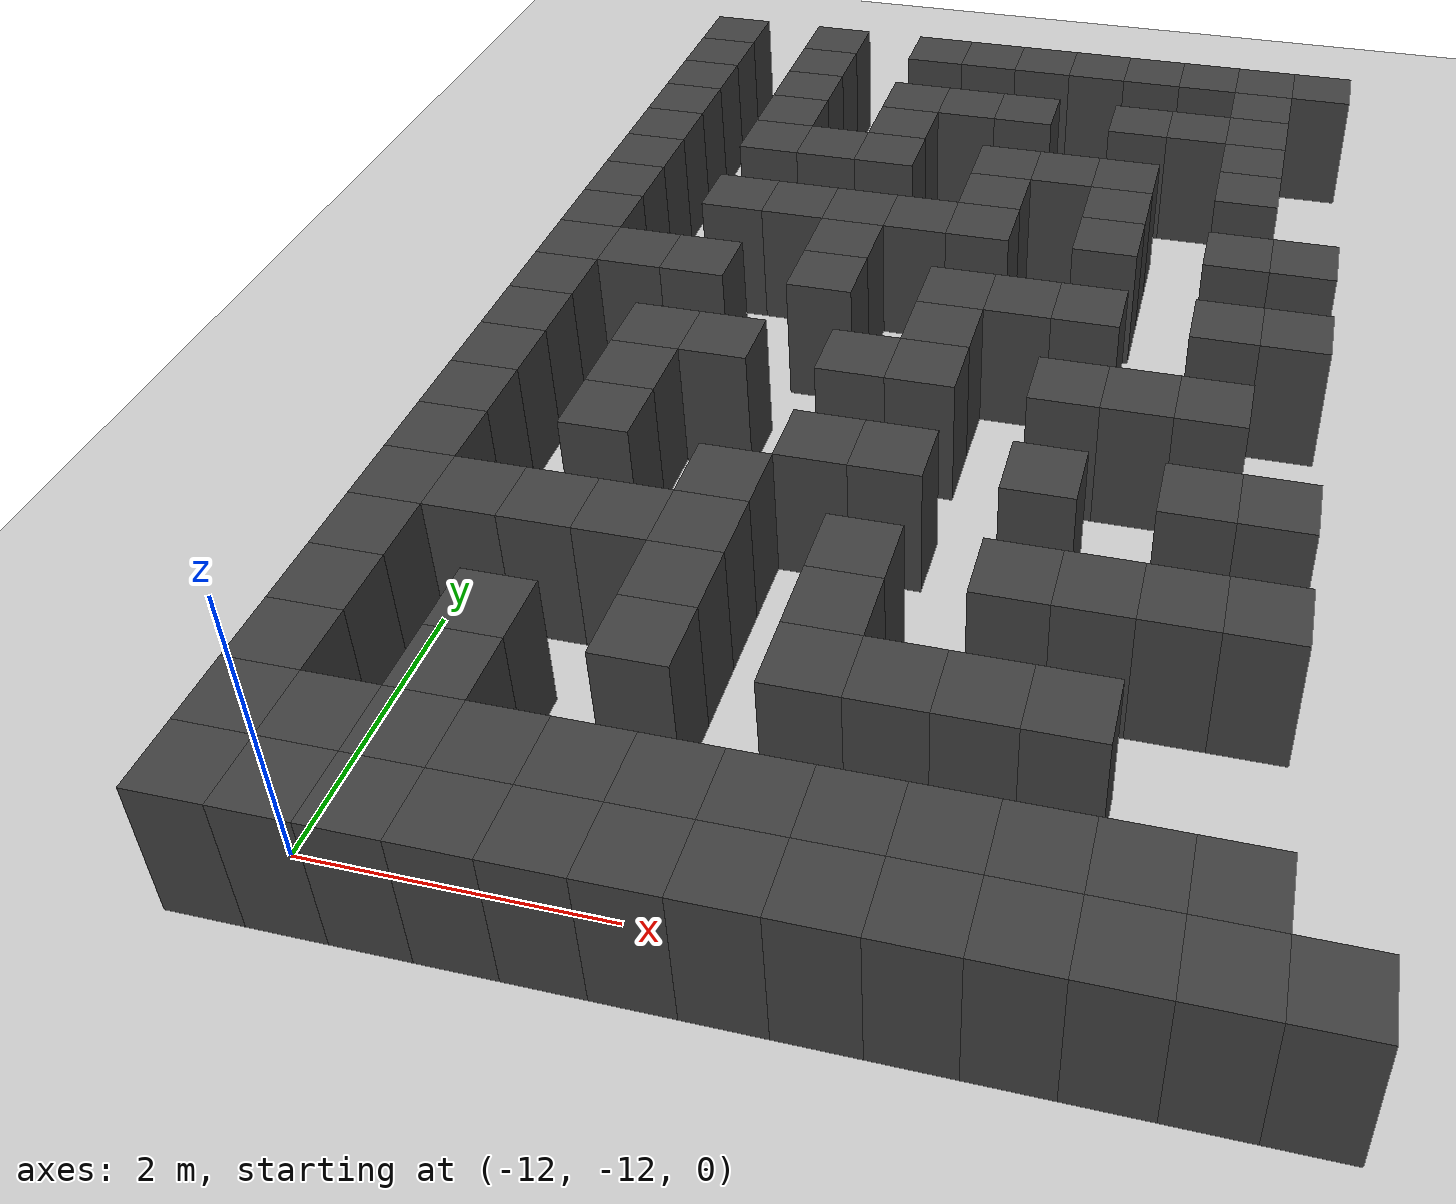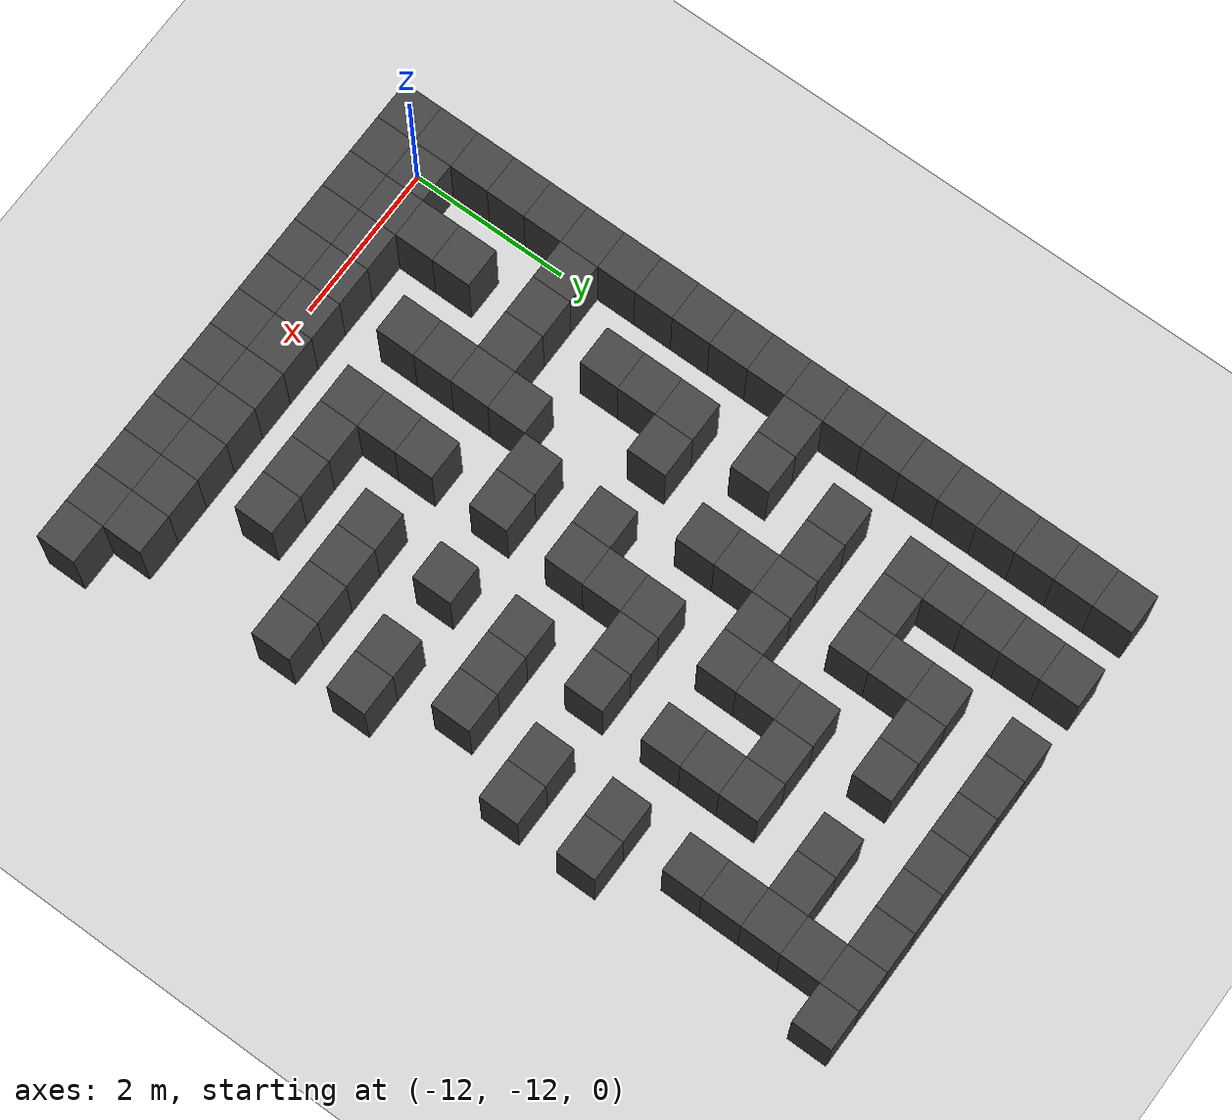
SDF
<sdf version="1.7">
 <world name="map_16734">
  <model name="ground_plane">
   <static>true</static>
   <link name="link">
    <collision name="collision">
     <geometry><plane><normal>0 0 1</normal><size>200 200</size></plane></geometry>
    </collision>
    <visual name="visual">
     <geometry><plane><normal>0 0 1</normal><size>200 200</size></plane></geometry>
     <material><ambient>0.8 0.8 0.8 1</ambient><diffuse>0.8 0.8 0.8 1</diffuse></material>
    </visual>
   </link>
  </model>
  <model name="maze_environment">
   <static>true</static>
   <link name="wall_727">
    <pose>-12.250 -2.750 0.500 0 0 0</pose>
    <collision name="col"><geometry><box><size>0.5 0.5 1.0</size></box></geometry></collision>
    <visual name="vis">
     <geometry><box><size>0.5 0.5 1.0</size></box></geometry>
     <material><ambient>0.15 0.15 0.15 1</ambient><diffuse>0.25 0.25 0.25 1</diffuse></material>
    </visual>
   </link>
   <link name="wall_728">
    <pose>-11.250 -2.750 0.500 0 0 0</pose>
    <collision name="col"><geometry><box><size>0.5 0.5 1.0</size></box></geometry></collision>
    <visual name="vis">
     <geometry><box><size>0.5 0.5 1.0</size></box></geometry>
     <material><ambient>0.15 0.15 0.15 1</ambient><diffuse>0.25 0.25 0.25 1</diffuse></material>
    </visual>
   </link>
   <link name="wall_729">
    <pose>-10.250 -2.750 0.500 0 0 0</pose>
    <collision name="col"><geometry><box><size>0.5 0.5 1.0</size></box></geometry></collision>
    <visual name="vis">
     <geometry><box><size>0.5 0.5 1.0</size></box></geometry>
     <material><ambient>0.15 0.15 0.15 1</ambient><diffuse>0.25 0.25 0.25 1</diffuse></material>
    </visual>
   </link>
   <link name="wall_730">
    <pose>-9.750 -2.750 0.500 0 0 0</pose>
    <collision name="col"><geometry><box><size>0.5 0.5 1.0</size></box></geometry></collision>
    <visual name="vis">
     <geometry><box><size>0.5 0.5 1.0</size></box></geometry>
     <material><ambient>0.15 0.15 0.15 1</ambient><diffuse>0.25 0.25 0.25 1</diffuse></material>
    </visual>
   </link>
   <link name="wall_731">
    <pose>-9.250 -2.750 0.500 0 0 0</pose>
    <collision name="col"><geometry><box><size>0.5 0.5 1.0</size></box></geometry></collision>
    <visual name="vis">
     <geometry><box><size>0.5 0.5 1.0</size></box></geometry>
     <material><ambient>0.15 0.15 0.15 1</ambient><diffuse>0.25 0.25 0.25 1</diffuse></material>
    </visual>
   </link>
   <link name="wall_732">
    <pose>-8.750 -2.750 0.500 0 0 0</pose>
    <collision name="col"><geometry><box><size>0.5 0.5 1.0</size></box></geometry></collision>
    <visual name="vis">
     <geometry><box><size>0.5 0.5 1.0</size></box></geometry>
     <material><ambient>0.15 0.15 0.15 1</ambient><diffuse>0.25 0.25 0.25 1</diffuse></material>
    </visual>
   </link>
   <link name="wall_733">
    <pose>-8.250 -2.750 0.500 0 0 0</pose>
    <collision name="col"><geometry><box><size>0.5 0.5 1.0</size></box></geometry></collision>
    <visual name="vis">
     <geometry><box><size>0.5 0.5 1.0</size></box></geometry>
     <material><ambient>0.15 0.15 0.15 1</ambient><diffuse>0.25 0.25 0.25 1</diffuse></material>
    </visual>
   </link>
   <link name="wall_734">
    <pose>-7.750 -2.750 0.500 0 0 0</pose>
    <collision name="col"><geometry><box><size>0.5 0.5 1.0</size></box></geometry></collision>
    <visual name="vis">
     <geometry><box><size>0.5 0.5 1.0</size></box></geometry>
     <material><ambient>0.15 0.15 0.15 1</ambient><diffuse>0.25 0.25 0.25 1</diffuse></material>
    </visual>
   </link>
   <link name="wall_735">
    <pose>-7.250 -2.750 0.500 0 0 0</pose>
    <collision name="col"><geometry><box><size>0.5 0.5 1.0</size></box></geometry></collision>
    <visual name="vis">
     <geometry><box><size>0.5 0.5 1.0</size></box></geometry>
     <material><ambient>0.15 0.15 0.15 1</ambient><diffuse>0.25 0.25 0.25 1</diffuse></material>
    </visual>
   </link>
   <link name="wall_736">
    <pose>-6.750 -2.750 0.500 0 0 0</pose>
    <collision name="col"><geometry><box><size>0.5 0.5 1.0</size></box></geometry></collision>
    <visual name="vis">
     <geometry><box><size>0.5 0.5 1.0</size></box></geometry>
     <material><ambient>0.15 0.15 0.15 1</ambient><diffuse>0.25 0.25 0.25 1</diffuse></material>
    </visual>
   </link>
   <link name="wall_760">
    <pose>-12.250 -3.250 0.500 0 0 0</pose>
    <collision name="col"><geometry><box><size>0.5 0.5 1.0</size></box></geometry></collision>
    <visual name="vis">
     <geometry><box><size>0.5 0.5 1.0</size></box></geometry>
     <material><ambient>0.15 0.15 0.15 1</ambient><diffuse>0.25 0.25 0.25 1</diffuse></material>
    </visual>
   </link>
   <link name="wall_761">
    <pose>-11.250 -3.250 0.500 0 0 0</pose>
    <collision name="col"><geometry><box><size>0.5 0.5 1.0</size></box></geometry></collision>
    <visual name="vis">
     <geometry><box><size>0.5 0.5 1.0</size></box></geometry>
     <material><ambient>0.15 0.15 0.15 1</ambient><diffuse>0.25 0.25 0.25 1</diffuse></material>
    </visual>
   </link>
   <link name="wall_762">
    <pose>-7.250 -3.250 0.500 0 0 0</pose>
    <collision name="col"><geometry><box><size>0.5 0.5 1.0</size></box></geometry></collision>
    <visual name="vis">
     <geometry><box><size>0.5 0.5 1.0</size></box></geometry>
     <material><ambient>0.15 0.15 0.15 1</ambient><diffuse>0.25 0.25 0.25 1</diffuse></material>
    </visual>
   </link>
   <link name="wall_774">
    <pose>-12.250 -3.750 0.500 0 0 0</pose>
    <collision name="col"><geometry><box><size>0.5 0.5 1.0</size></box></geometry></collision>
    <visual name="vis">
     <geometry><box><size>0.5 0.5 1.0</size></box></geometry>
     <material><ambient>0.15 0.15 0.15 1</ambient><diffuse>0.25 0.25 0.25 1</diffuse></material>
    </visual>
   </link>
   <link name="wall_775">
    <pose>-11.250 -3.750 0.500 0 0 0</pose>
    <collision name="col"><geometry><box><size>0.5 0.5 1.0</size></box></geometry></collision>
    <visual name="vis">
     <geometry><box><size>0.5 0.5 1.0</size></box></geometry>
     <material><ambient>0.15 0.15 0.15 1</ambient><diffuse>0.25 0.25 0.25 1</diffuse></material>
    </visual>
   </link>
   <link name="wall_776">
    <pose>-10.250 -3.750 0.500 0 0 0</pose>
    <collision name="col"><geometry><box><size>0.5 0.5 1.0</size></box></geometry></collision>
    <visual name="vis">
     <geometry><box><size>0.5 0.5 1.0</size></box></geometry>
     <material><ambient>0.15 0.15 0.15 1</ambient><diffuse>0.25 0.25 0.25 1</diffuse></material>
    </visual>
   </link>
   <link name="wall_777">
    <pose>-9.750 -3.750 0.500 0 0 0</pose>
    <collision name="col"><geometry><box><size>0.5 0.5 1.0</size></box></geometry></collision>
    <visual name="vis">
     <geometry><box><size>0.5 0.5 1.0</size></box></geometry>
     <material><ambient>0.15 0.15 0.15 1</ambient><diffuse>0.25 0.25 0.25 1</diffuse></material>
    </visual>
   </link>
   <link name="wall_778">
    <pose>-9.250 -3.750 0.500 0 0 0</pose>
    <collision name="col"><geometry><box><size>0.5 0.5 1.0</size></box></geometry></collision>
    <visual name="vis">
     <geometry><box><size>0.5 0.5 1.0</size></box></geometry>
     <material><ambient>0.15 0.15 0.15 1</ambient><diffuse>0.25 0.25 0.25 1</diffuse></material>
    </visual>
   </link>
   <link name="wall_779">
    <pose>-8.250 -3.750 0.500 0 0 0</pose>
    <collision name="col"><geometry><box><size>0.5 0.5 1.0</size></box></geometry></collision>
    <visual name="vis">
     <geometry><box><size>0.5 0.5 1.0</size></box></geometry>
     <material><ambient>0.15 0.15 0.15 1</ambient><diffuse>0.25 0.25 0.25 1</diffuse></material>
    </visual>
   </link>
   <link name="wall_780">
    <pose>-7.750 -3.750 0.500 0 0 0</pose>
    <collision name="col"><geometry><box><size>0.5 0.5 1.0</size></box></geometry></collision>
    <visual name="vis">
     <geometry><box><size>0.5 0.5 1.0</size></box></geometry>
     <material><ambient>0.15 0.15 0.15 1</ambient><diffuse>0.25 0.25 0.25 1</diffuse></material>
    </visual>
   </link>
   <link name="wall_781">
    <pose>-7.250 -3.750 0.500 0 0 0</pose>
    <collision name="col"><geometry><box><size>0.5 0.5 1.0</size></box></geometry></collision>
    <visual name="vis">
     <geometry><box><size>0.5 0.5 1.0</size></box></geometry>
     <material><ambient>0.15 0.15 0.15 1</ambient><diffuse>0.25 0.25 0.25 1</diffuse></material>
    </visual>
   </link>
   <link name="wall_811">
    <pose>-12.250 -4.250 0.500 0 0 0</pose>
    <collision name="col"><geometry><box><size>0.5 0.5 1.0</size></box></geometry></collision>
    <visual name="vis">
     <geometry><box><size>0.5 0.5 1.0</size></box></geometry>
     <material><ambient>0.15 0.15 0.15 1</ambient><diffuse>0.25 0.25 0.25 1</diffuse></material>
    </visual>
   </link>
   <link name="wall_812">
    <pose>-11.250 -4.250 0.500 0 0 0</pose>
    <collision name="col"><geometry><box><size>0.5 0.5 1.0</size></box></geometry></collision>
    <visual name="vis">
     <geometry><box><size>0.5 0.5 1.0</size></box></geometry>
     <material><ambient>0.15 0.15 0.15 1</ambient><diffuse>0.25 0.25 0.25 1</diffuse></material>
    </visual>
   </link>
   <link name="wall_813">
    <pose>-10.250 -4.250 0.500 0 0 0</pose>
    <collision name="col"><geometry><box><size>0.5 0.5 1.0</size></box></geometry></collision>
    <visual name="vis">
     <geometry><box><size>0.5 0.5 1.0</size></box></geometry>
     <material><ambient>0.15 0.15 0.15 1</ambient><diffuse>0.25 0.25 0.25 1</diffuse></material>
    </visual>
   </link>
   <link name="wall_814">
    <pose>-7.250 -4.250 0.500 0 0 0</pose>
    <collision name="col"><geometry><box><size>0.5 0.5 1.0</size></box></geometry></collision>
    <visual name="vis">
     <geometry><box><size>0.5 0.5 1.0</size></box></geometry>
     <material><ambient>0.15 0.15 0.15 1</ambient><diffuse>0.25 0.25 0.25 1</diffuse></material>
    </visual>
   </link>
   <link name="wall_824">
    <pose>-12.250 -4.750 0.500 0 0 0</pose>
    <collision name="col"><geometry><box><size>0.5 0.5 1.0</size></box></geometry></collision>
    <visual name="vis">
     <geometry><box><size>0.5 0.5 1.0</size></box></geometry>
     <material><ambient>0.15 0.15 0.15 1</ambient><diffuse>0.25 0.25 0.25 1</diffuse></material>
    </visual>
   </link>
   <link name="wall_825">
    <pose>-11.250 -4.750 0.500 0 0 0</pose>
    <collision name="col"><geometry><box><size>0.5 0.5 1.0</size></box></geometry></collision>
    <visual name="vis">
     <geometry><box><size>0.5 0.5 1.0</size></box></geometry>
     <material><ambient>0.15 0.15 0.15 1</ambient><diffuse>0.25 0.25 0.25 1</diffuse></material>
    </visual>
   </link>
   <link name="wall_826">
    <pose>-10.750 -4.750 0.500 0 0 0</pose>
    <collision name="col"><geometry><box><size>0.5 0.5 1.0</size></box></geometry></collision>
    <visual name="vis">
     <geometry><box><size>0.5 0.5 1.0</size></box></geometry>
     <material><ambient>0.15 0.15 0.15 1</ambient><diffuse>0.25 0.25 0.25 1</diffuse></material>
    </visual>
   </link>
   <link name="wall_827">
    <pose>-10.250 -4.750 0.500 0 0 0</pose>
    <collision name="col"><geometry><box><size>0.5 0.5 1.0</size></box></geometry></collision>
    <visual name="vis">
     <geometry><box><size>0.5 0.5 1.0</size></box></geometry>
     <material><ambient>0.15 0.15 0.15 1</ambient><diffuse>0.25 0.25 0.25 1</diffuse></material>
    </visual>
   </link>
   <link name="wall_828">
    <pose>-9.250 -4.750 0.500 0 0 0</pose>
    <collision name="col"><geometry><box><size>0.5 0.5 1.0</size></box></geometry></collision>
    <visual name="vis">
     <geometry><box><size>0.5 0.5 1.0</size></box></geometry>
     <material><ambient>0.15 0.15 0.15 1</ambient><diffuse>0.25 0.25 0.25 1</diffuse></material>
    </visual>
   </link>
   <link name="wall_829">
    <pose>-8.750 -4.750 0.500 0 0 0</pose>
    <collision name="col"><geometry><box><size>0.5 0.5 1.0</size></box></geometry></collision>
    <visual name="vis">
     <geometry><box><size>0.5 0.5 1.0</size></box></geometry>
     <material><ambient>0.15 0.15 0.15 1</ambient><diffuse>0.25 0.25 0.25 1</diffuse></material>
    </visual>
   </link>
   <link name="wall_830">
    <pose>-8.250 -4.750 0.500 0 0 0</pose>
    <collision name="col"><geometry><box><size>0.5 0.5 1.0</size></box></geometry></collision>
    <visual name="vis">
     <geometry><box><size>0.5 0.5 1.0</size></box></geometry>
     <material><ambient>0.15 0.15 0.15 1</ambient><diffuse>0.25 0.25 0.25 1</diffuse></material>
    </visual>
   </link>
   <link name="wall_831">
    <pose>-7.250 -4.750 0.500 0 0 0</pose>
    <collision name="col"><geometry><box><size>0.5 0.5 1.0</size></box></geometry></collision>
    <visual name="vis">
     <geometry><box><size>0.5 0.5 1.0</size></box></geometry>
     <material><ambient>0.15 0.15 0.15 1</ambient><diffuse>0.25 0.25 0.25 1</diffuse></material>
    </visual>
   </link>
   <link name="wall_861">
    <pose>-12.250 -5.250 0.500 0 0 0</pose>
    <collision name="col"><geometry><box><size>0.5 0.5 1.0</size></box></geometry></collision>
    <visual name="vis">
     <geometry><box><size>0.5 0.5 1.0</size></box></geometry>
     <material><ambient>0.15 0.15 0.15 1</ambient><diffuse>0.25 0.25 0.25 1</diffuse></material>
    </visual>
   </link>
   <link name="wall_862">
    <pose>-9.250 -5.250 0.500 0 0 0</pose>
    <collision name="col"><geometry><box><size>0.5 0.5 1.0</size></box></geometry></collision>
    <visual name="vis">
     <geometry><box><size>0.5 0.5 1.0</size></box></geometry>
     <material><ambient>0.15 0.15 0.15 1</ambient><diffuse>0.25 0.25 0.25 1</diffuse></material>
    </visual>
   </link>
   <link name="wall_863">
    <pose>-8.250 -5.250 0.500 0 0 0</pose>
    <collision name="col"><geometry><box><size>0.5 0.5 1.0</size></box></geometry></collision>
    <visual name="vis">
     <geometry><box><size>0.5 0.5 1.0</size></box></geometry>
     <material><ambient>0.15 0.15 0.15 1</ambient><diffuse>0.25 0.25 0.25 1</diffuse></material>
    </visual>
   </link>
   <link name="wall_875">
    <pose>-12.250 -5.750 0.500 0 0 0</pose>
    <collision name="col"><geometry><box><size>0.5 0.5 1.0</size></box></geometry></collision>
    <visual name="vis">
     <geometry><box><size>0.5 0.5 1.0</size></box></geometry>
     <material><ambient>0.15 0.15 0.15 1</ambient><diffuse>0.25 0.25 0.25 1</diffuse></material>
    </visual>
   </link>
   <link name="wall_876">
    <pose>-11.250 -5.750 0.500 0 0 0</pose>
    <collision name="col"><geometry><box><size>0.5 0.5 1.0</size></box></geometry></collision>
    <visual name="vis">
     <geometry><box><size>0.5 0.5 1.0</size></box></geometry>
     <material><ambient>0.15 0.15 0.15 1</ambient><diffuse>0.25 0.25 0.25 1</diffuse></material>
    </visual>
   </link>
   <link name="wall_877">
    <pose>-10.750 -5.750 0.500 0 0 0</pose>
    <collision name="col"><geometry><box><size>0.5 0.5 1.0</size></box></geometry></collision>
    <visual name="vis">
     <geometry><box><size>0.5 0.5 1.0</size></box></geometry>
     <material><ambient>0.15 0.15 0.15 1</ambient><diffuse>0.25 0.25 0.25 1</diffuse></material>
    </visual>
   </link>
   <link name="wall_878">
    <pose>-10.250 -5.750 0.500 0 0 0</pose>
    <collision name="col"><geometry><box><size>0.5 0.5 1.0</size></box></geometry></collision>
    <visual name="vis">
     <geometry><box><size>0.5 0.5 1.0</size></box></geometry>
     <material><ambient>0.15 0.15 0.15 1</ambient><diffuse>0.25 0.25 0.25 1</diffuse></material>
    </visual>
   </link>
   <link name="wall_879">
    <pose>-9.750 -5.750 0.500 0 0 0</pose>
    <collision name="col"><geometry><box><size>0.5 0.5 1.0</size></box></geometry></collision>
    <visual name="vis">
     <geometry><box><size>0.5 0.5 1.0</size></box></geometry>
     <material><ambient>0.15 0.15 0.15 1</ambient><diffuse>0.25 0.25 0.25 1</diffuse></material>
    </visual>
   </link>
   <link name="wall_880">
    <pose>-9.250 -5.750 0.500 0 0 0</pose>
    <collision name="col"><geometry><box><size>0.5 0.5 1.0</size></box></geometry></collision>
    <visual name="vis">
     <geometry><box><size>0.5 0.5 1.0</size></box></geometry>
     <material><ambient>0.15 0.15 0.15 1</ambient><diffuse>0.25 0.25 0.25 1</diffuse></material>
    </visual>
   </link>
   <link name="wall_881">
    <pose>-8.250 -5.750 0.500 0 0 0</pose>
    <collision name="col"><geometry><box><size>0.5 0.5 1.0</size></box></geometry></collision>
    <visual name="vis">
     <geometry><box><size>0.5 0.5 1.0</size></box></geometry>
     <material><ambient>0.15 0.15 0.15 1</ambient><diffuse>0.25 0.25 0.25 1</diffuse></material>
    </visual>
   </link>
   <link name="wall_882">
    <pose>-7.250 -5.750 0.500 0 0 0</pose>
    <collision name="col"><geometry><box><size>0.5 0.5 1.0</size></box></geometry></collision>
    <visual name="vis">
     <geometry><box><size>0.5 0.5 1.0</size></box></geometry>
     <material><ambient>0.15 0.15 0.15 1</ambient><diffuse>0.25 0.25 0.25 1</diffuse></material>
    </visual>
   </link>
   <link name="wall_883">
    <pose>-6.750 -5.750 0.500 0 0 0</pose>
    <collision name="col"><geometry><box><size>0.5 0.5 1.0</size></box></geometry></collision>
    <visual name="vis">
     <geometry><box><size>0.5 0.5 1.0</size></box></geometry>
     <material><ambient>0.15 0.15 0.15 1</ambient><diffuse>0.25 0.25 0.25 1</diffuse></material>
    </visual>
   </link>
   <link name="wall_911">
    <pose>-12.250 -6.250 0.500 0 0 0</pose>
    <collision name="col"><geometry><box><size>0.5 0.5 1.0</size></box></geometry></collision>
    <visual name="vis">
     <geometry><box><size>0.5 0.5 1.0</size></box></geometry>
     <material><ambient>0.15 0.15 0.15 1</ambient><diffuse>0.25 0.25 0.25 1</diffuse></material>
    </visual>
   </link>
   <link name="wall_912">
    <pose>-10.250 -6.250 0.500 0 0 0</pose>
    <collision name="col"><geometry><box><size>0.5 0.5 1.0</size></box></geometry></collision>
    <visual name="vis">
     <geometry><box><size>0.5 0.5 1.0</size></box></geometry>
     <material><ambient>0.15 0.15 0.15 1</ambient><diffuse>0.25 0.25 0.25 1</diffuse></material>
    </visual>
   </link>
   <link name="wall_920">
    <pose>-12.250 -6.750 0.500 0 0 0</pose>
    <collision name="col"><geometry><box><size>0.5 0.5 1.0</size></box></geometry></collision>
    <visual name="vis">
     <geometry><box><size>0.5 0.5 1.0</size></box></geometry>
     <material><ambient>0.15 0.15 0.15 1</ambient><diffuse>0.25 0.25 0.25 1</diffuse></material>
    </visual>
   </link>
   <link name="wall_921">
    <pose>-11.750 -6.750 0.500 0 0 0</pose>
    <collision name="col"><geometry><box><size>0.5 0.5 1.0</size></box></geometry></collision>
    <visual name="vis">
     <geometry><box><size>0.5 0.5 1.0</size></box></geometry>
     <material><ambient>0.15 0.15 0.15 1</ambient><diffuse>0.25 0.25 0.25 1</diffuse></material>
    </visual>
   </link>
   <link name="wall_922">
    <pose>-11.250 -6.750 0.500 0 0 0</pose>
    <collision name="col"><geometry><box><size>0.5 0.5 1.0</size></box></geometry></collision>
    <visual name="vis">
     <geometry><box><size>0.5 0.5 1.0</size></box></geometry>
     <material><ambient>0.15 0.15 0.15 1</ambient><diffuse>0.25 0.25 0.25 1</diffuse></material>
    </visual>
   </link>
   <link name="wall_923">
    <pose>-10.250 -6.750 0.500 0 0 0</pose>
    <collision name="col"><geometry><box><size>0.5 0.5 1.0</size></box></geometry></collision>
    <visual name="vis">
     <geometry><box><size>0.5 0.5 1.0</size></box></geometry>
     <material><ambient>0.15 0.15 0.15 1</ambient><diffuse>0.25 0.25 0.25 1</diffuse></material>
    </visual>
   </link>
   <link name="wall_924">
    <pose>-9.250 -6.750 0.500 0 0 0</pose>
    <collision name="col"><geometry><box><size>0.5 0.5 1.0</size></box></geometry></collision>
    <visual name="vis">
     <geometry><box><size>0.5 0.5 1.0</size></box></geometry>
     <material><ambient>0.15 0.15 0.15 1</ambient><diffuse>0.25 0.25 0.25 1</diffuse></material>
    </visual>
   </link>
   <link name="wall_925">
    <pose>-8.750 -6.750 0.500 0 0 0</pose>
    <collision name="col"><geometry><box><size>0.5 0.5 1.0</size></box></geometry></collision>
    <visual name="vis">
     <geometry><box><size>0.5 0.5 1.0</size></box></geometry>
     <material><ambient>0.15 0.15 0.15 1</ambient><diffuse>0.25 0.25 0.25 1</diffuse></material>
    </visual>
   </link>
   <link name="wall_926">
    <pose>-8.250 -6.750 0.500 0 0 0</pose>
    <collision name="col"><geometry><box><size>0.5 0.5 1.0</size></box></geometry></collision>
    <visual name="vis">
     <geometry><box><size>0.5 0.5 1.0</size></box></geometry>
     <material><ambient>0.15 0.15 0.15 1</ambient><diffuse>0.25 0.25 0.25 1</diffuse></material>
    </visual>
   </link>
   <link name="wall_927">
    <pose>-7.250 -6.750 0.500 0 0 0</pose>
    <collision name="col"><geometry><box><size>0.5 0.5 1.0</size></box></geometry></collision>
    <visual name="vis">
     <geometry><box><size>0.5 0.5 1.0</size></box></geometry>
     <material><ambient>0.15 0.15 0.15 1</ambient><diffuse>0.25 0.25 0.25 1</diffuse></material>
    </visual>
   </link>
   <link name="wall_928">
    <pose>-6.750 -6.750 0.500 0 0 0</pose>
    <collision name="col"><geometry><box><size>0.5 0.5 1.0</size></box></geometry></collision>
    <visual name="vis">
     <geometry><box><size>0.5 0.5 1.0</size></box></geometry>
     <material><ambient>0.15 0.15 0.15 1</ambient><diffuse>0.25 0.25 0.25 1</diffuse></material>
    </visual>
   </link>
   <link name="wall_957">
    <pose>-12.250 -7.250 0.500 0 0 0</pose>
    <collision name="col"><geometry><box><size>0.5 0.5 1.0</size></box></geometry></collision>
    <visual name="vis">
     <geometry><box><size>0.5 0.5 1.0</size></box></geometry>
     <material><ambient>0.15 0.15 0.15 1</ambient><diffuse>0.25 0.25 0.25 1</diffuse></material>
    </visual>
   </link>
   <link name="wall_958">
    <pose>-9.250 -7.250 0.500 0 0 0</pose>
    <collision name="col"><geometry><box><size>0.5 0.5 1.0</size></box></geometry></collision>
    <visual name="vis">
     <geometry><box><size>0.5 0.5 1.0</size></box></geometry>
     <material><ambient>0.15 0.15 0.15 1</ambient><diffuse>0.25 0.25 0.25 1</diffuse></material>
    </visual>
   </link>
   <link name="wall_968">
    <pose>-12.250 -7.750 0.500 0 0 0</pose>
    <collision name="col"><geometry><box><size>0.5 0.5 1.0</size></box></geometry></collision>
    <visual name="vis">
     <geometry><box><size>0.5 0.5 1.0</size></box></geometry>
     <material><ambient>0.15 0.15 0.15 1</ambient><diffuse>0.25 0.25 0.25 1</diffuse></material>
    </visual>
   </link>
   <link name="wall_969">
    <pose>-11.250 -7.750 0.500 0 0 0</pose>
    <collision name="col"><geometry><box><size>0.5 0.5 1.0</size></box></geometry></collision>
    <visual name="vis">
     <geometry><box><size>0.5 0.5 1.0</size></box></geometry>
     <material><ambient>0.15 0.15 0.15 1</ambient><diffuse>0.25 0.25 0.25 1</diffuse></material>
    </visual>
   </link>
   <link name="wall_970">
    <pose>-10.750 -7.750 0.500 0 0 0</pose>
    <collision name="col"><geometry><box><size>0.5 0.5 1.0</size></box></geometry></collision>
    <visual name="vis">
     <geometry><box><size>0.5 0.5 1.0</size></box></geometry>
     <material><ambient>0.15 0.15 0.15 1</ambient><diffuse>0.25 0.25 0.25 1</diffuse></material>
    </visual>
   </link>
   <link name="wall_971">
    <pose>-9.750 -7.750 0.500 0 0 0</pose>
    <collision name="col"><geometry><box><size>0.5 0.5 1.0</size></box></geometry></collision>
    <visual name="vis">
     <geometry><box><size>0.5 0.5 1.0</size></box></geometry>
     <material><ambient>0.15 0.15 0.15 1</ambient><diffuse>0.25 0.25 0.25 1</diffuse></material>
    </visual>
   </link>
   <link name="wall_972">
    <pose>-9.250 -7.750 0.500 0 0 0</pose>
    <collision name="col"><geometry><box><size>0.5 0.5 1.0</size></box></geometry></collision>
    <visual name="vis">
     <geometry><box><size>0.5 0.5 1.0</size></box></geometry>
     <material><ambient>0.15 0.15 0.15 1</ambient><diffuse>0.25 0.25 0.25 1</diffuse></material>
    </visual>
   </link>
   <link name="wall_973">
    <pose>-8.250 -7.750 0.500 0 0 0</pose>
    <collision name="col"><geometry><box><size>0.5 0.5 1.0</size></box></geometry></collision>
    <visual name="vis">
     <geometry><box><size>0.5 0.5 1.0</size></box></geometry>
     <material><ambient>0.15 0.15 0.15 1</ambient><diffuse>0.25 0.25 0.25 1</diffuse></material>
    </visual>
   </link>
   <link name="wall_974">
    <pose>-7.750 -7.750 0.500 0 0 0</pose>
    <collision name="col"><geometry><box><size>0.5 0.5 1.0</size></box></geometry></collision>
    <visual name="vis">
     <geometry><box><size>0.5 0.5 1.0</size></box></geometry>
     <material><ambient>0.15 0.15 0.15 1</ambient><diffuse>0.25 0.25 0.25 1</diffuse></material>
    </visual>
   </link>
   <link name="wall_975">
    <pose>-7.250 -7.750 0.500 0 0 0</pose>
    <collision name="col"><geometry><box><size>0.5 0.5 1.0</size></box></geometry></collision>
    <visual name="vis">
     <geometry><box><size>0.5 0.5 1.0</size></box></geometry>
     <material><ambient>0.15 0.15 0.15 1</ambient><diffuse>0.25 0.25 0.25 1</diffuse></material>
    </visual>
   </link>
   <link name="wall_1004">
    <pose>-12.250 -8.250 0.500 0 0 0</pose>
    <collision name="col"><geometry><box><size>0.5 0.5 1.0</size></box></geometry></collision>
    <visual name="vis">
     <geometry><box><size>0.5 0.5 1.0</size></box></geometry>
     <material><ambient>0.15 0.15 0.15 1</ambient><diffuse>0.25 0.25 0.25 1</diffuse></material>
    </visual>
   </link>
   <link name="wall_1005">
    <pose>-11.250 -8.250 0.500 0 0 0</pose>
    <collision name="col"><geometry><box><size>0.5 0.5 1.0</size></box></geometry></collision>
    <visual name="vis">
     <geometry><box><size>0.5 0.5 1.0</size></box></geometry>
     <material><ambient>0.15 0.15 0.15 1</ambient><diffuse>0.25 0.25 0.25 1</diffuse></material>
    </visual>
   </link>
   <link name="wall_1014">
    <pose>-12.250 -8.750 0.500 0 0 0</pose>
    <collision name="col"><geometry><box><size>0.5 0.5 1.0</size></box></geometry></collision>
    <visual name="vis">
     <geometry><box><size>0.5 0.5 1.0</size></box></geometry>
     <material><ambient>0.15 0.15 0.15 1</ambient><diffuse>0.25 0.25 0.25 1</diffuse></material>
    </visual>
   </link>
   <link name="wall_1015">
    <pose>-11.250 -8.750 0.500 0 0 0</pose>
    <collision name="col"><geometry><box><size>0.5 0.5 1.0</size></box></geometry></collision>
    <visual name="vis">
     <geometry><box><size>0.5 0.5 1.0</size></box></geometry>
     <material><ambient>0.15 0.15 0.15 1</ambient><diffuse>0.25 0.25 0.25 1</diffuse></material>
    </visual>
   </link>
   <link name="wall_1016">
    <pose>-9.750 -8.750 0.500 0 0 0</pose>
    <collision name="col"><geometry><box><size>0.5 0.5 1.0</size></box></geometry></collision>
    <visual name="vis">
     <geometry><box><size>0.5 0.5 1.0</size></box></geometry>
     <material><ambient>0.15 0.15 0.15 1</ambient><diffuse>0.25 0.25 0.25 1</diffuse></material>
    </visual>
   </link>
   <link name="wall_1017">
    <pose>-9.250 -8.750 0.500 0 0 0</pose>
    <collision name="col"><geometry><box><size>0.5 0.5 1.0</size></box></geometry></collision>
    <visual name="vis">
     <geometry><box><size>0.5 0.5 1.0</size></box></geometry>
     <material><ambient>0.15 0.15 0.15 1</ambient><diffuse>0.25 0.25 0.25 1</diffuse></material>
    </visual>
   </link>
   <link name="wall_1018">
    <pose>-8.250 -8.750 0.500 0 0 0</pose>
    <collision name="col"><geometry><box><size>0.5 0.5 1.0</size></box></geometry></collision>
    <visual name="vis">
     <geometry><box><size>0.5 0.5 1.0</size></box></geometry>
     <material><ambient>0.15 0.15 0.15 1</ambient><diffuse>0.25 0.25 0.25 1</diffuse></material>
    </visual>
   </link>
   <link name="wall_1019">
    <pose>-7.250 -8.750 0.500 0 0 0</pose>
    <collision name="col"><geometry><box><size>0.5 0.5 1.0</size></box></geometry></collision>
    <visual name="vis">
     <geometry><box><size>0.5 0.5 1.0</size></box></geometry>
     <material><ambient>0.15 0.15 0.15 1</ambient><diffuse>0.25 0.25 0.25 1</diffuse></material>
    </visual>
   </link>
   <link name="wall_1020">
    <pose>-6.750 -8.750 0.500 0 0 0</pose>
    <collision name="col"><geometry><box><size>0.5 0.5 1.0</size></box></geometry></collision>
    <visual name="vis">
     <geometry><box><size>0.5 0.5 1.0</size></box></geometry>
     <material><ambient>0.15 0.15 0.15 1</ambient><diffuse>0.25 0.25 0.25 1</diffuse></material>
    </visual>
   </link>
   <link name="wall_1049">
    <pose>-12.250 -9.250 0.500 0 0 0</pose>
    <collision name="col"><geometry><box><size>0.5 0.5 1.0</size></box></geometry></collision>
    <visual name="vis">
     <geometry><box><size>0.5 0.5 1.0</size></box></geometry>
     <material><ambient>0.15 0.15 0.15 1</ambient><diffuse>0.25 0.25 0.25 1</diffuse></material>
    </visual>
   </link>
   <link name="wall_1050">
    <pose>-10.250 -9.250 0.500 0 0 0</pose>
    <collision name="col"><geometry><box><size>0.5 0.5 1.0</size></box></geometry></collision>
    <visual name="vis">
     <geometry><box><size>0.5 0.5 1.0</size></box></geometry>
     <material><ambient>0.15 0.15 0.15 1</ambient><diffuse>0.25 0.25 0.25 1</diffuse></material>
    </visual>
   </link>
   <link name="wall_1061">
    <pose>-12.250 -9.750 0.500 0 0 0</pose>
    <collision name="col"><geometry><box><size>0.5 0.5 1.0</size></box></geometry></collision>
    <visual name="vis">
     <geometry><box><size>0.5 0.5 1.0</size></box></geometry>
     <material><ambient>0.15 0.15 0.15 1</ambient><diffuse>0.25 0.25 0.25 1</diffuse></material>
    </visual>
   </link>
   <link name="wall_1062">
    <pose>-11.750 -9.750 0.500 0 0 0</pose>
    <collision name="col"><geometry><box><size>0.5 0.5 1.0</size></box></geometry></collision>
    <visual name="vis">
     <geometry><box><size>0.5 0.5 1.0</size></box></geometry>
     <material><ambient>0.15 0.15 0.15 1</ambient><diffuse>0.25 0.25 0.25 1</diffuse></material>
    </visual>
   </link>
   <link name="wall_1063">
    <pose>-11.250 -9.750 0.500 0 0 0</pose>
    <collision name="col"><geometry><box><size>0.5 0.5 1.0</size></box></geometry></collision>
    <visual name="vis">
     <geometry><box><size>0.5 0.5 1.0</size></box></geometry>
     <material><ambient>0.15 0.15 0.15 1</ambient><diffuse>0.25 0.25 0.25 1</diffuse></material>
    </visual>
   </link>
   <link name="wall_1064">
    <pose>-10.750 -9.750 0.500 0 0 0</pose>
    <collision name="col"><geometry><box><size>0.5 0.5 1.0</size></box></geometry></collision>
    <visual name="vis">
     <geometry><box><size>0.5 0.5 1.0</size></box></geometry>
     <material><ambient>0.15 0.15 0.15 1</ambient><diffuse>0.25 0.25 0.25 1</diffuse></material>
    </visual>
   </link>
   <link name="wall_1065">
    <pose>-10.250 -9.750 0.500 0 0 0</pose>
    <collision name="col"><geometry><box><size>0.5 0.5 1.0</size></box></geometry></collision>
    <visual name="vis">
     <geometry><box><size>0.5 0.5 1.0</size></box></geometry>
     <material><ambient>0.15 0.15 0.15 1</ambient><diffuse>0.25 0.25 0.25 1</diffuse></material>
    </visual>
   </link>
   <link name="wall_1066">
    <pose>-9.250 -9.750 0.500 0 0 0</pose>
    <collision name="col"><geometry><box><size>0.5 0.5 1.0</size></box></geometry></collision>
    <visual name="vis">
     <geometry><box><size>0.5 0.5 1.0</size></box></geometry>
     <material><ambient>0.15 0.15 0.15 1</ambient><diffuse>0.25 0.25 0.25 1</diffuse></material>
    </visual>
   </link>
   <link name="wall_1067">
    <pose>-8.250 -9.750 0.500 0 0 0</pose>
    <collision name="col"><geometry><box><size>0.5 0.5 1.0</size></box></geometry></collision>
    <visual name="vis">
     <geometry><box><size>0.5 0.5 1.0</size></box></geometry>
     <material><ambient>0.15 0.15 0.15 1</ambient><diffuse>0.25 0.25 0.25 1</diffuse></material>
    </visual>
   </link>
   <link name="wall_1068">
    <pose>-7.750 -9.750 0.500 0 0 0</pose>
    <collision name="col"><geometry><box><size>0.5 0.5 1.0</size></box></geometry></collision>
    <visual name="vis">
     <geometry><box><size>0.5 0.5 1.0</size></box></geometry>
     <material><ambient>0.15 0.15 0.15 1</ambient><diffuse>0.25 0.25 0.25 1</diffuse></material>
    </visual>
   </link>
   <link name="wall_1069">
    <pose>-7.250 -9.750 0.500 0 0 0</pose>
    <collision name="col"><geometry><box><size>0.5 0.5 1.0</size></box></geometry></collision>
    <visual name="vis">
     <geometry><box><size>0.5 0.5 1.0</size></box></geometry>
     <material><ambient>0.15 0.15 0.15 1</ambient><diffuse>0.25 0.25 0.25 1</diffuse></material>
    </visual>
   </link>
   <link name="wall_1070">
    <pose>-6.750 -9.750 0.500 0 0 0</pose>
    <collision name="col"><geometry><box><size>0.5 0.5 1.0</size></box></geometry></collision>
    <visual name="vis">
     <geometry><box><size>0.5 0.5 1.0</size></box></geometry>
     <material><ambient>0.15 0.15 0.15 1</ambient><diffuse>0.25 0.25 0.25 1</diffuse></material>
    </visual>
   </link>
   <link name="wall_1097">
    <pose>-12.250 -10.250 0.500 0 0 0</pose>
    <collision name="col"><geometry><box><size>0.5 0.5 1.0</size></box></geometry></collision>
    <visual name="vis">
     <geometry><box><size>0.5 0.5 1.0</size></box></geometry>
     <material><ambient>0.15 0.15 0.15 1</ambient><diffuse>0.25 0.25 0.25 1</diffuse></material>
    </visual>
   </link>
   <link name="wall_1098">
    <pose>-10.250 -10.250 0.500 0 0 0</pose>
    <collision name="col"><geometry><box><size>0.5 0.5 1.0</size></box></geometry></collision>
    <visual name="vis">
     <geometry><box><size>0.5 0.5 1.0</size></box></geometry>
     <material><ambient>0.15 0.15 0.15 1</ambient><diffuse>0.25 0.25 0.25 1</diffuse></material>
    </visual>
   </link>
   <link name="wall_1099">
    <pose>-9.250 -10.250 0.500 0 0 0</pose>
    <collision name="col"><geometry><box><size>0.5 0.5 1.0</size></box></geometry></collision>
    <visual name="vis">
     <geometry><box><size>0.5 0.5 1.0</size></box></geometry>
     <material><ambient>0.15 0.15 0.15 1</ambient><diffuse>0.25 0.25 0.25 1</diffuse></material>
    </visual>
   </link>
   <link name="wall_1110">
    <pose>-12.250 -10.750 0.500 0 0 0</pose>
    <collision name="col"><geometry><box><size>0.5 0.5 1.0</size></box></geometry></collision>
    <visual name="vis">
     <geometry><box><size>0.5 0.5 1.0</size></box></geometry>
     <material><ambient>0.15 0.15 0.15 1</ambient><diffuse>0.25 0.25 0.25 1</diffuse></material>
    </visual>
   </link>
   <link name="wall_1111">
    <pose>-11.250 -10.750 0.500 0 0 0</pose>
    <collision name="col"><geometry><box><size>0.5 0.5 1.0</size></box></geometry></collision>
    <visual name="vis">
     <geometry><box><size>0.5 0.5 1.0</size></box></geometry>
     <material><ambient>0.15 0.15 0.15 1</ambient><diffuse>0.25 0.25 0.25 1</diffuse></material>
    </visual>
   </link>
   <link name="wall_1112">
    <pose>-10.250 -10.750 0.500 0 0 0</pose>
    <collision name="col"><geometry><box><size>0.5 0.5 1.0</size></box></geometry></collision>
    <visual name="vis">
     <geometry><box><size>0.5 0.5 1.0</size></box></geometry>
     <material><ambient>0.15 0.15 0.15 1</ambient><diffuse>0.25 0.25 0.25 1</diffuse></material>
    </visual>
   </link>
   <link name="wall_1113">
    <pose>-9.250 -10.750 0.500 0 0 0</pose>
    <collision name="col"><geometry><box><size>0.5 0.5 1.0</size></box></geometry></collision>
    <visual name="vis">
     <geometry><box><size>0.5 0.5 1.0</size></box></geometry>
     <material><ambient>0.15 0.15 0.15 1</ambient><diffuse>0.25 0.25 0.25 1</diffuse></material>
    </visual>
   </link>
   <link name="wall_1114">
    <pose>-8.750 -10.750 0.500 0 0 0</pose>
    <collision name="col"><geometry><box><size>0.5 0.5 1.0</size></box></geometry></collision>
    <visual name="vis">
     <geometry><box><size>0.5 0.5 1.0</size></box></geometry>
     <material><ambient>0.15 0.15 0.15 1</ambient><diffuse>0.25 0.25 0.25 1</diffuse></material>
    </visual>
   </link>
   <link name="wall_1115">
    <pose>-8.250 -10.750 0.500 0 0 0</pose>
    <collision name="col"><geometry><box><size>0.5 0.5 1.0</size></box></geometry></collision>
    <visual name="vis">
     <geometry><box><size>0.5 0.5 1.0</size></box></geometry>
     <material><ambient>0.15 0.15 0.15 1</ambient><diffuse>0.25 0.25 0.25 1</diffuse></material>
    </visual>
   </link>
   <link name="wall_1116">
    <pose>-7.750 -10.750 0.500 0 0 0</pose>
    <collision name="col"><geometry><box><size>0.5 0.5 1.0</size></box></geometry></collision>
    <visual name="vis">
     <geometry><box><size>0.5 0.5 1.0</size></box></geometry>
     <material><ambient>0.15 0.15 0.15 1</ambient><diffuse>0.25 0.25 0.25 1</diffuse></material>
    </visual>
   </link>
   <link name="wall_1140">
    <pose>-12.250 -11.250 0.500 0 0 0</pose>
    <collision name="col"><geometry><box><size>0.5 0.5 1.0</size></box></geometry></collision>
    <visual name="vis">
     <geometry><box><size>0.5 0.5 1.0</size></box></geometry>
     <material><ambient>0.15 0.15 0.15 1</ambient><diffuse>0.25 0.25 0.25 1</diffuse></material>
    </visual>
   </link>
   <link name="wall_1141">
    <pose>-11.250 -11.250 0.500 0 0 0</pose>
    <collision name="col"><geometry><box><size>0.5 0.5 1.0</size></box></geometry></collision>
    <visual name="vis">
     <geometry><box><size>0.5 0.5 1.0</size></box></geometry>
     <material><ambient>0.15 0.15 0.15 1</ambient><diffuse>0.25 0.25 0.25 1</diffuse></material>
    </visual>
   </link>
   <link name="wall_1148">
    <pose>-12.250 -11.750 0.500 0 0 0</pose>
    <collision name="col"><geometry><box><size>0.5 0.5 1.0</size></box></geometry></collision>
    <visual name="vis">
     <geometry><box><size>0.5 0.5 1.0</size></box></geometry>
     <material><ambient>0.15 0.15 0.15 1</ambient><diffuse>0.25 0.25 0.25 1</diffuse></material>
    </visual>
   </link>
   <link name="wall_1149">
    <pose>-11.750 -11.750 0.500 0 0 0</pose>
    <collision name="col"><geometry><box><size>0.5 0.5 1.0</size></box></geometry></collision>
    <visual name="vis">
     <geometry><box><size>0.5 0.5 1.0</size></box></geometry>
     <material><ambient>0.15 0.15 0.15 1</ambient><diffuse>0.25 0.25 0.25 1</diffuse></material>
    </visual>
   </link>
   <link name="wall_1150">
    <pose>-11.250 -11.750 0.500 0 0 0</pose>
    <collision name="col"><geometry><box><size>0.5 0.5 1.0</size></box></geometry></collision>
    <visual name="vis">
     <geometry><box><size>0.5 0.5 1.0</size></box></geometry>
     <material><ambient>0.15 0.15 0.15 1</ambient><diffuse>0.25 0.25 0.25 1</diffuse></material>
    </visual>
   </link>
   <link name="wall_1151">
    <pose>-10.750 -11.750 0.500 0 0 0</pose>
    <collision name="col"><geometry><box><size>0.5 0.5 1.0</size></box></geometry></collision>
    <visual name="vis">
     <geometry><box><size>0.5 0.5 1.0</size></box></geometry>
     <material><ambient>0.15 0.15 0.15 1</ambient><diffuse>0.25 0.25 0.25 1</diffuse></material>
    </visual>
   </link>
   <link name="wall_1152">
    <pose>-10.250 -11.750 0.500 0 0 0</pose>
    <collision name="col"><geometry><box><size>0.5 0.5 1.0</size></box></geometry></collision>
    <visual name="vis">
     <geometry><box><size>0.5 0.5 1.0</size></box></geometry>
     <material><ambient>0.15 0.15 0.15 1</ambient><diffuse>0.25 0.25 0.25 1</diffuse></material>
    </visual>
   </link>
   <link name="wall_1153">
    <pose>-9.750 -11.750 0.500 0 0 0</pose>
    <collision name="col"><geometry><box><size>0.5 0.5 1.0</size></box></geometry></collision>
    <visual name="vis">
     <geometry><box><size>0.5 0.5 1.0</size></box></geometry>
     <material><ambient>0.15 0.15 0.15 1</ambient><diffuse>0.25 0.25 0.25 1</diffuse></material>
    </visual>
   </link>
   <link name="wall_1154">
    <pose>-9.250 -11.750 0.500 0 0 0</pose>
    <collision name="col"><geometry><box><size>0.5 0.5 1.0</size></box></geometry></collision>
    <visual name="vis">
     <geometry><box><size>0.5 0.5 1.0</size></box></geometry>
     <material><ambient>0.15 0.15 0.15 1</ambient><diffuse>0.25 0.25 0.25 1</diffuse></material>
    </visual>
   </link>
   <link name="wall_1155">
    <pose>-8.750 -11.750 0.500 0 0 0</pose>
    <collision name="col"><geometry><box><size>0.5 0.5 1.0</size></box></geometry></collision>
    <visual name="vis">
     <geometry><box><size>0.5 0.5 1.0</size></box></geometry>
     <material><ambient>0.15 0.15 0.15 1</ambient><diffuse>0.25 0.25 0.25 1</diffuse></material>
    </visual>
   </link>
   <link name="wall_1156">
    <pose>-8.250 -11.750 0.500 0 0 0</pose>
    <collision name="col"><geometry><box><size>0.5 0.5 1.0</size></box></geometry></collision>
    <visual name="vis">
     <geometry><box><size>0.5 0.5 1.0</size></box></geometry>
     <material><ambient>0.15 0.15 0.15 1</ambient><diffuse>0.25 0.25 0.25 1</diffuse></material>
    </visual>
   </link>
   <link name="wall_1157">
    <pose>-7.750 -11.750 0.500 0 0 0</pose>
    <collision name="col"><geometry><box><size>0.5 0.5 1.0</size></box></geometry></collision>
    <visual name="vis">
     <geometry><box><size>0.5 0.5 1.0</size></box></geometry>
     <material><ambient>0.15 0.15 0.15 1</ambient><diffuse>0.25 0.25 0.25 1</diffuse></material>
    </visual>
   </link>
   <link name="wall_1158">
    <pose>-7.250 -11.750 0.500 0 0 0</pose>
    <collision name="col"><geometry><box><size>0.5 0.5 1.0</size></box></geometry></collision>
    <visual name="vis">
     <geometry><box><size>0.5 0.5 1.0</size></box></geometry>
     <material><ambient>0.15 0.15 0.15 1</ambient><diffuse>0.25 0.25 0.25 1</diffuse></material>
    </visual>
   </link>
   <link name="wall_1159">
    <pose>-6.750 -11.750 0.500 0 0 0</pose>
    <collision name="col"><geometry><box><size>0.5 0.5 1.0</size></box></geometry></collision>
    <visual name="vis">
     <geometry><box><size>0.5 0.5 1.0</size></box></geometry>
     <material><ambient>0.15 0.15 0.15 1</ambient><diffuse>0.25 0.25 0.25 1</diffuse></material>
    </visual>
   </link>
   <link name="wall_1196">
    <pose>-12.250 -12.250 0.500 0 0 0</pose>
    <collision name="col"><geometry><box><size>0.5 0.5 1.0</size></box></geometry></collision>
    <visual name="vis">
     <geometry><box><size>0.5 0.5 1.0</size></box></geometry>
     <material><ambient>0.15 0.15 0.15 1</ambient><diffuse>0.25 0.25 0.25 1</diffuse></material>
    </visual>
   </link>
   <link name="wall_1197">
    <pose>-11.750 -12.250 0.500 0 0 0</pose>
    <collision name="col"><geometry><box><size>0.5 0.5 1.0</size></box></geometry></collision>
    <visual name="vis">
     <geometry><box><size>0.5 0.5 1.0</size></box></geometry>
     <material><ambient>0.15 0.15 0.15 1</ambient><diffuse>0.25 0.25 0.25 1</diffuse></material>
    </visual>
   </link>
   <link name="wall_1198">
    <pose>-11.250 -12.250 0.500 0 0 0</pose>
    <collision name="col"><geometry><box><size>0.5 0.5 1.0</size></box></geometry></collision>
    <visual name="vis">
     <geometry><box><size>0.5 0.5 1.0</size></box></geometry>
     <material><ambient>0.15 0.15 0.15 1</ambient><diffuse>0.25 0.25 0.25 1</diffuse></material>
    </visual>
   </link>
   <link name="wall_1199">
    <pose>-10.750 -12.250 0.500 0 0 0</pose>
    <collision name="col"><geometry><box><size>0.5 0.5 1.0</size></box></geometry></collision>
    <visual name="vis">
     <geometry><box><size>0.5 0.5 1.0</size></box></geometry>
     <material><ambient>0.15 0.15 0.15 1</ambient><diffuse>0.25 0.25 0.25 1</diffuse></material>
    </visual>
   </link>
   <link name="wall_1200">
    <pose>-10.250 -12.250 0.500 0 0 0</pose>
    <collision name="col"><geometry><box><size>0.5 0.5 1.0</size></box></geometry></collision>
    <visual name="vis">
     <geometry><box><size>0.5 0.5 1.0</size></box></geometry>
     <material><ambient>0.15 0.15 0.15 1</ambient><diffuse>0.25 0.25 0.25 1</diffuse></material>
    </visual>
   </link>
   <link name="wall_1201">
    <pose>-9.750 -12.250 0.500 0 0 0</pose>
    <collision name="col"><geometry><box><size>0.5 0.5 1.0</size></box></geometry></collision>
    <visual name="vis">
     <geometry><box><size>0.5 0.5 1.0</size></box></geometry>
     <material><ambient>0.15 0.15 0.15 1</ambient><diffuse>0.25 0.25 0.25 1</diffuse></material>
    </visual>
   </link>
   <link name="wall_1202">
    <pose>-9.250 -12.250 0.500 0 0 0</pose>
    <collision name="col"><geometry><box><size>0.5 0.5 1.0</size></box></geometry></collision>
    <visual name="vis">
     <geometry><box><size>0.5 0.5 1.0</size></box></geometry>
     <material><ambient>0.15 0.15 0.15 1</ambient><diffuse>0.25 0.25 0.25 1</diffuse></material>
    </visual>
   </link>
   <link name="wall_1203">
    <pose>-8.750 -12.250 0.500 0 0 0</pose>
    <collision name="col"><geometry><box><size>0.5 0.5 1.0</size></box></geometry></collision>
    <visual name="vis">
     <geometry><box><size>0.5 0.5 1.0</size></box></geometry>
     <material><ambient>0.15 0.15 0.15 1</ambient><diffuse>0.25 0.25 0.25 1</diffuse></material>
    </visual>
   </link>
   <link name="wall_1204">
    <pose>-8.250 -12.250 0.500 0 0 0</pose>
    <collision name="col"><geometry><box><size>0.5 0.5 1.0</size></box></geometry></collision>
    <visual name="vis">
     <geometry><box><size>0.5 0.5 1.0</size></box></geometry>
     <material><ambient>0.15 0.15 0.15 1</ambient><diffuse>0.25 0.25 0.25 1</diffuse></material>
    </visual>
   </link>
   <link name="wall_1205">
    <pose>-7.750 -12.250 0.500 0 0 0</pose>
    <collision name="col"><geometry><box><size>0.5 0.5 1.0</size></box></geometry></collision>
    <visual name="vis">
     <geometry><box><size>0.5 0.5 1.0</size></box></geometry>
     <material><ambient>0.15 0.15 0.15 1</ambient><diffuse>0.25 0.25 0.25 1</diffuse></material>
    </visual>
   </link>
   <link name="wall_1206">
    <pose>-7.250 -12.250 0.500 0 0 0</pose>
    <collision name="col"><geometry><box><size>0.5 0.5 1.0</size></box></geometry></collision>
    <visual name="vis">
     <geometry><box><size>0.5 0.5 1.0</size></box></geometry>
     <material><ambient>0.15 0.15 0.15 1</ambient><diffuse>0.25 0.25 0.25 1</diffuse></material>
    </visual>
   </link>
   <link name="wall_1207">
    <pose>-6.750 -12.250 0.500 0 0 0</pose>
    <collision name="col"><geometry><box><size>0.5 0.5 1.0</size></box></geometry></collision>
    <visual name="vis">
     <geometry><box><size>0.5 0.5 1.0</size></box></geometry>
     <material><ambient>0.15 0.15 0.15 1</ambient><diffuse>0.25 0.25 0.25 1</diffuse></material>
    </visual>
   </link>
   <link name="wall_1208">
    <pose>-6.250 -12.250 0.500 0 0 0</pose>
    <collision name="col"><geometry><box><size>0.5 0.5 1.0</size></box></geometry></collision>
    <visual name="vis">
     <geometry><box><size>0.5 0.5 1.0</size></box></geometry>
     <material><ambient>0.15 0.15 0.15 1</ambient><diffuse>0.25 0.25 0.25 1</diffuse></material>
    </visual>
   </link>
  </model>
 </world>
</sdf>
